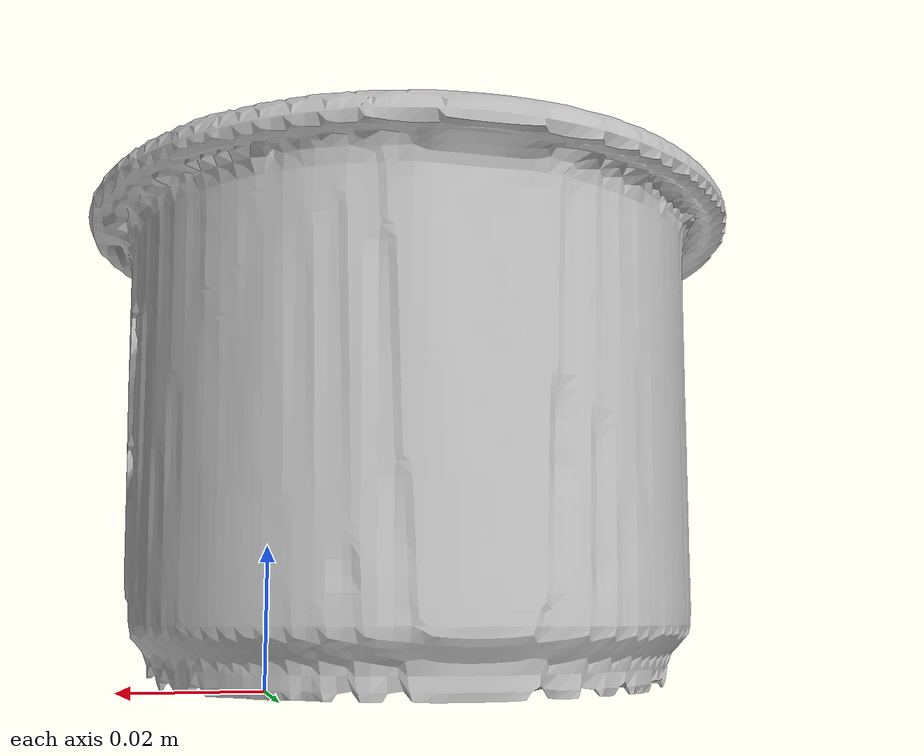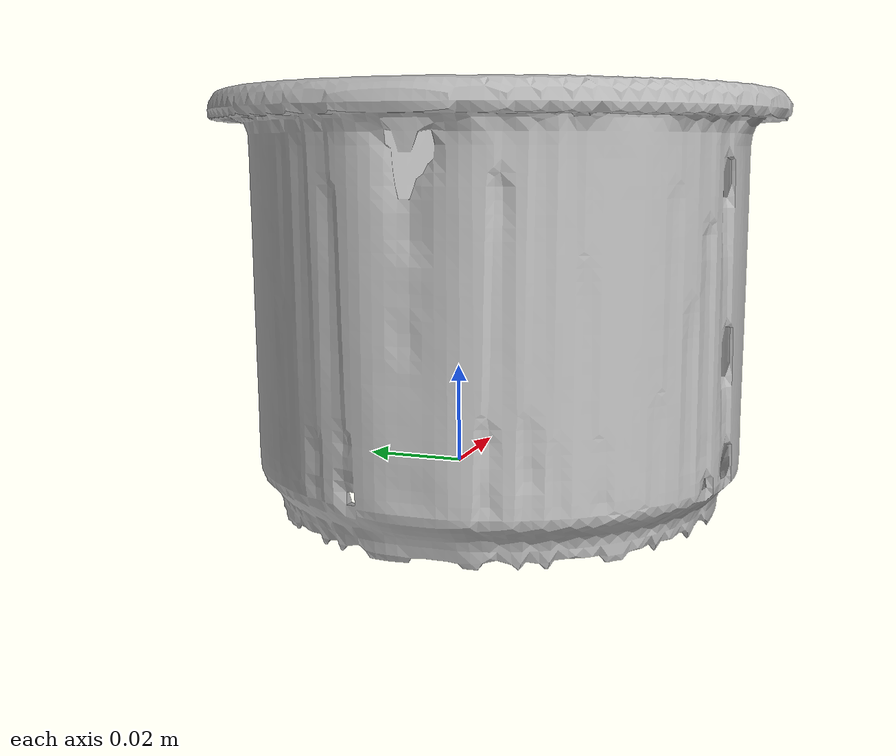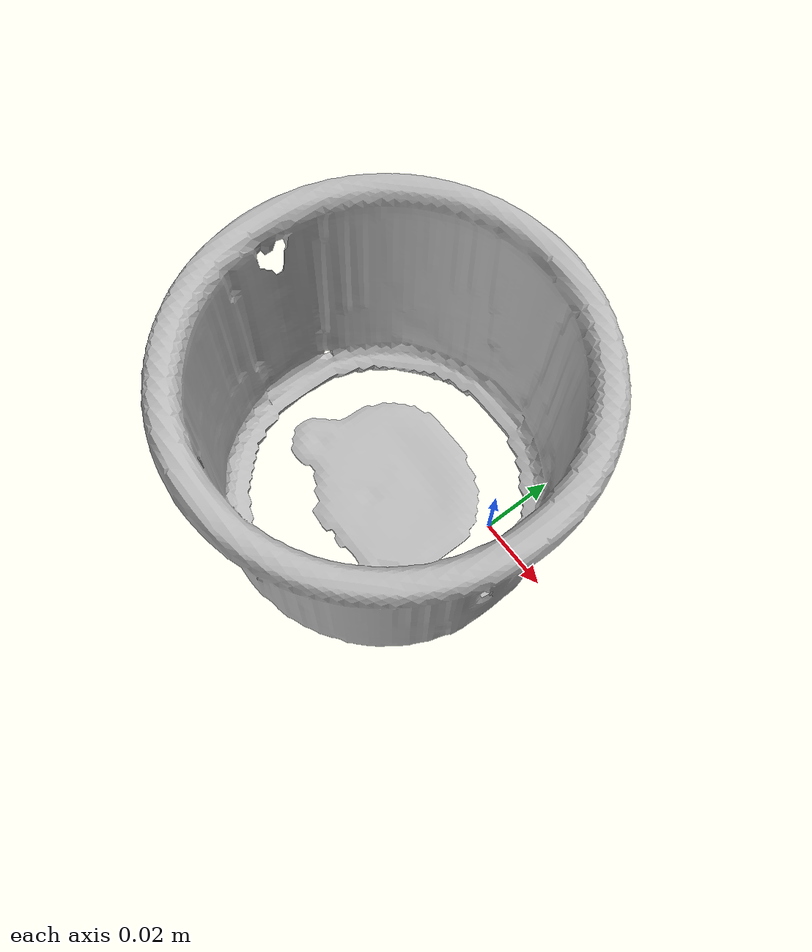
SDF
<?xml version='1.0'?>
<sdf version="1.4">
  <model name="j_cups">
    <static>false</static>
    <link name="link">
      <inertial>
        <pose>-0.02316916577060105 -0.016288097645136355 0.036470255939330766 -0.44934590103735816 -1.526630519609508 0.5216090305651496</pose>
        <mass>5.4586268237156156e-05</mass>
        <inertia>
          <ixx>9.389537474926547e-08</ixx>
          <ixy>-2.1677361754315605e-23</ixy>
          <ixz>4.005857947579502e-24</ixz>
          <iyy>8.166500601973389e-08</iyy>
          <iyz>-4.931117343596152e-24</iyz>
          <izz>8.064667762078222e-08</izz>
        </inertia>
      </inertial>
      <collision name="collision">
        <geometry>
          <!-- Use a downsampled mesh for collisions -->
          <mesh>
            <uri>model://065-j_cups/google_16k/low_poly.obj</uri>
	        </mesh>
        </geometry>
        <surface>
        <friction>
          <ode>
            <mu>10000</mu>
            <mu2>10000</mu2>
          </ode>
        </friction>
      </surface>
      </collision>
      <visual name="visual">
        <geometry>
          <mesh>
            <uri>model://065-j_cups/google_16k/textured.obj</uri>
	        </mesh>
        </geometry>
        <material>
          <script>
            <uri>model://065-j_cups/j_cups.material</uri>
            <name>j_cups</name>
          </script>
        </material>
      </visual>
    </link>
  </model>
</sdf>
